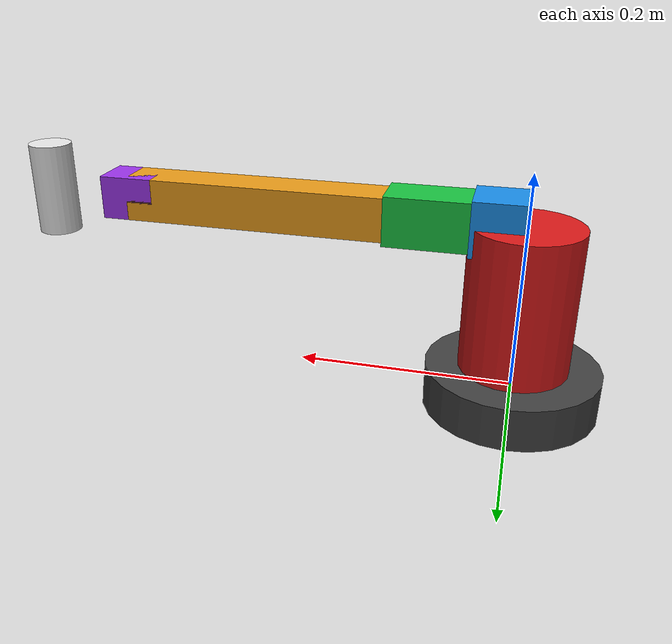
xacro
<?xml version="1.0"?>
<robot name="five_dof_cobot_rollJ4" xmlns:xacro="http://www.ros.org/wiki/xacro">

  <xacro:property name="L1" value="0.13461"/>
  <xacro:property name="L2" value="0.0475"/>
  <xacro:property name="L3" value="0.075"/>
  <xacro:property name="L4" value="0.24168"/>
  <xacro:property name="TOOL" value="0.08597"/>

  <xacro:property name="m1" value="3.183"/>
  <xacro:property name="m2" value="0.230"/>
  <xacro:property name="m3" value="0.400"/>
  <xacro:property name="m4" value="0.200"/>
  <xacro:property name="m5" value="0.100"/>

  <material name="mat_base"><color rgba="0.25 0.25 0.25 1.0"/></material>
  <material name="mat_l1"><color rgba="0.85 0.10 0.10 1.0"/></material>
  <material name="mat_l2"><color rgba="0.10 0.55 0.90 1.0"/></material>
  <material name="mat_l3"><color rgba="0.10 0.75 0.25 1.0"/></material>
  <material name="mat_l4"><color rgba="0.90 0.60 0.10 1.0"/></material>
  <material name="mat_l5"><color rgba="0.60 0.20 0.90 1.0"/></material>
  <material name="mat_ee"><color rgba="0.90 0.90 0.90 1.0"/></material>

  <link name="base_link">
    <visual><geometry><cylinder radius="0.08" length="0.04"/></geometry><material name="mat_base"/></visual>
    <collision><geometry><cylinder radius="0.08" length="0.04"/></geometry></collision>
    <inertial><origin xyz="0 0 0"/><mass value="4.113"/><inertia ixx="33.2" iyy="120.02" izz="120.21" ixy="0" ixz="0" iyz="0"/></inertial>
  </link>

  <link name="link1">
    <visual><origin xyz="0 0 ${L1/2}"/><geometry><cylinder radius="0.05" length="${L1}"/></geometry><material name="mat_l1"/></visual>
    <collision><origin xyz="0 0 ${L1/2}"/><geometry><cylinder radius="0.05" length="${L1}"/></geometry></collision>
    <inertial><origin xyz="0 0 ${L1/2}"/><mass value="${m1}"/><inertia ixx="20" iyy="40" izz="60" ixy="0" ixz="0" iyz="0"/></inertial>
  </link>

  <link name="link2">
    <visual><origin xyz="${L2/2} 0 0"/><geometry><box size="${L2} 0.05 0.05"/></geometry><material name="mat_l2"/></visual>
    <collision><origin xyz="${L2/2} 0 0"/><geometry><box size="${L2} 0.05 0.05"/></geometry></collision>
    <inertial><origin xyz="${L2/2} 0 0"/><mass value="${m2}"/><inertia ixx="10" iyy="30" izz="50" ixy="0" ixz="0" iyz="0"/></inertial>
  </link>

  <link name="link3">
    <visual><origin xyz="${L3/2} 0 0"/><geometry><box size="${L3} 0.045 0.045"/></geometry><material name="mat_l3"/></visual>
    <collision><origin xyz="${L3/2} 0 0"/><geometry><box size="${L3} 0.045 0.045"/></geometry></collision>
    <inertial><origin xyz="${L3/2} 0 0"/><mass value="${m3}"/><inertia ixx="2" iyy="20" izz="10" ixy="0" ixz="0" iyz="0"/></inertial>
  </link>

  <link name="link4">
    <visual><origin xyz="${L4/2} 0 0"/><geometry><box size="${L4} 0.04 0.04"/></geometry><material name="mat_l4"/></visual>
    <collision><origin xyz="${L4/2} 0 0"/><geometry><box size="${L4} 0.04 0.04"/></geometry></collision>
    <inertial><origin xyz="${L4/2} 0 0"/><mass value="${m4}"/><inertia ixx="1" iyy="30" izz="2" ixy="0" ixz="0" iyz="0"/></inertial>
  </link>

  <link name="link5">
    <visual><origin xyz="0 0 0"/><geometry><box size="0.05 0.04 0.04"/></geometry><material name="mat_l5"/></visual>
    <collision><origin xyz="0 0 0"/><geometry><box size="0.05 0.04 0.04"/></geometry></collision>
    <inertial><origin xyz="0 0 0"/><mass value="${m5}"/><inertia ixx="0.2" iyy="0.02" izz="0.1" ixy="0" ixz="0" iyz="0"/></inertial>
  </link>

  <link name="ee_link">
    <visual><origin xyz="${TOOL} 0 0"/><geometry><cylinder radius="0.02" length="${TOOL}"/></geometry><material name="mat_ee"/></visual>
    <collision><origin xyz="${TOOL} 0 0"/><geometry><cylinder radius="0.02" length="${TOOL}"/></geometry></collision>
  </link>

  <joint name="joint1_base_yaw" type="revolute">
    <parent link="base_link"/><child link="link1"/>
    <origin xyz="0 0 0.02" rpy="0 0 0"/>
    <axis xyz="0 0 1"/>
    <limit lower="-3.14" upper="3.14" velocity="2.5" effort="101.2"/>
  </joint>

  <joint name="joint2_shoulder_pitch" type="revolute">
    <parent link="link1"/><child link="link2"/>
    <origin xyz="0 0 ${L1}" rpy="0 0 0"/>
    <axis xyz="0 1 0"/>
    <limit lower="-3.14" upper="3.14" velocity="2.5" effort="33.6"/>
  </joint>

  <joint name="joint3_elbow_pitch" type="revolute">
    <parent link="link2"/><child link="link3"/>
    <origin xyz="${L2} 0 0" rpy="0 0 0"/>
    <axis xyz="0 1 0"/>
    <limit lower="-3.14" upper="3.14" velocity="2.5" effort="33.6"/>
  </joint>

  <joint name="joint4_wrist_roll" type="revolute">
    <parent link="link3"/><child link="link4"/>
    <origin xyz="${L3} 0 0" rpy="0 0 0"/>
    <axis xyz="1 0 0"/>
    <limit lower="-3.14" upper="3.14" velocity="2.5" effort="33.6"/>
  </joint>

  <joint name="joint5_wrist_pitch" type="revolute">
    <parent link="link4"/><child link="link5"/>
    <origin xyz="${L4} 0 0" rpy="0 0 0"/>
    <axis xyz="0 1 0"/>
    <limit lower="-3.14" upper="3.14" velocity="2.5" effort="25.2"/>
  </joint>

  <joint name="joint_ee_fixed" type="fixed">
    <parent link="link5"/><child link="ee_link"/>
    <origin xyz="0 0 0" rpy="0 0 0"/>
  </joint>

</robot>
